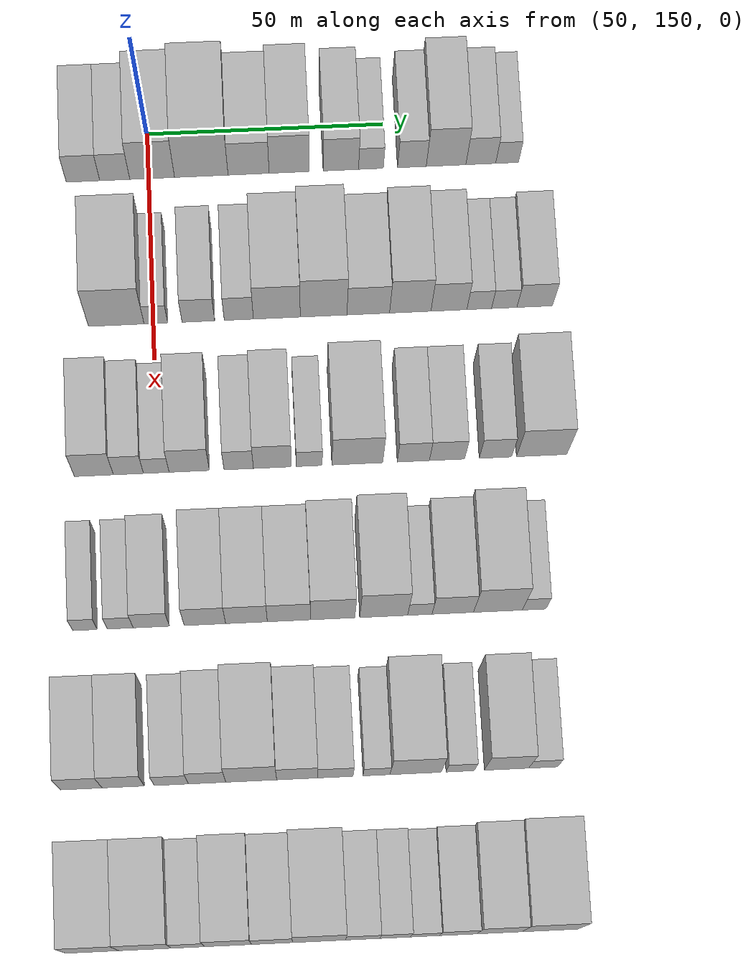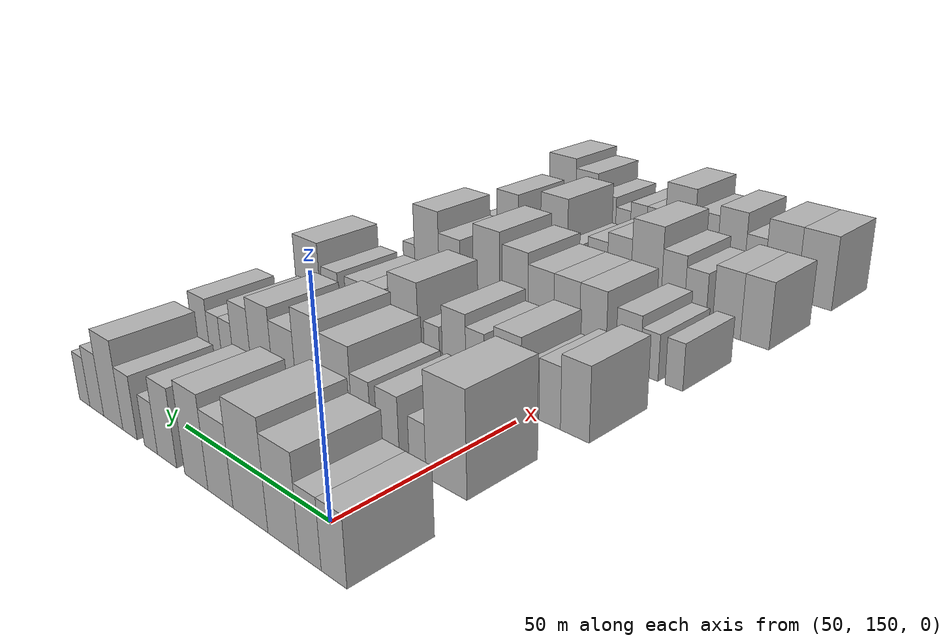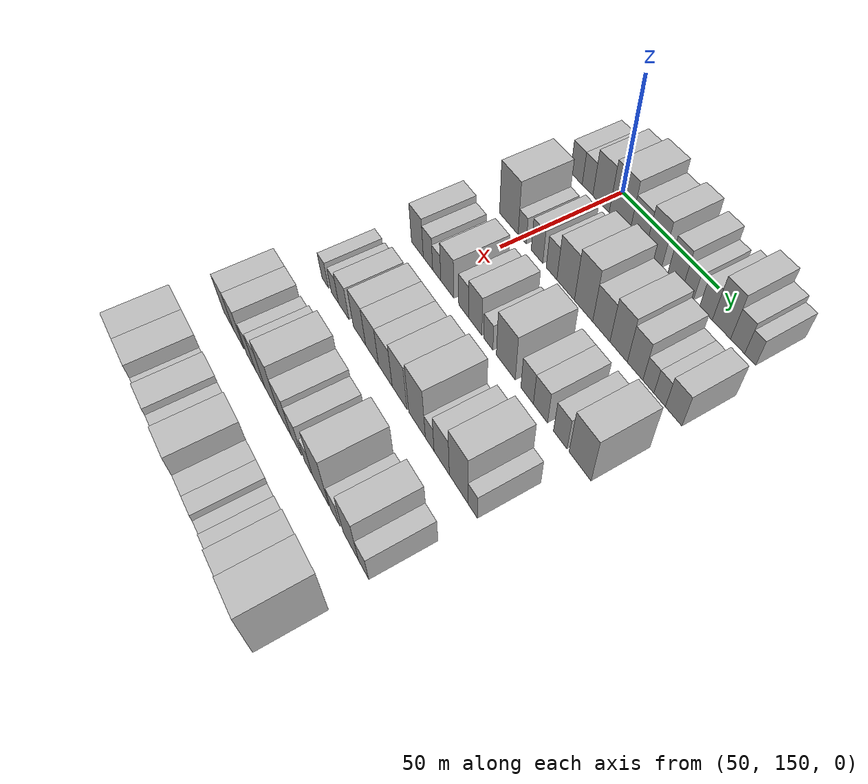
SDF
<sdf version="1.6">
 <world name="default">
  <model name="building_66">
   <static>1</static>
   <pose>50.0000 136.1511 0 0.000000 0.000000 0.000000</pose>
   <link name="link">
    <pose>0 0 7.50 0 0 0</pose>
    <collision name="collision"><geometry><box><size>20.0000 7.0738 15.0000</size></box></geometry></collision>
    <visual name="visual">
     <cast_shadows>0</cast_shadows>
     <geometry><box><size>20.0000 7.0738 15.0000</size></box></geometry>
     <material>
      <script>
       <uri>model://HANNAS_wall/materials/scripts</uri>
       <uri>model://HANNAS_wall/materials/textures</uri>
       <name>vrc/HANNAS_wall</name>
      </script>
     </material>
    </visual>
   </link>
  </model>
  <model name="building_67">
   <static>1</static>
   <pose>50.0000 142.8592 0 0.000000 0.000000 0.000000</pose>
   <link name="link">
    <pose>0 0 7.50 0 0 0</pose>
    <collision name="collision"><geometry><box><size>20.0000 6.3424 15.0000</size></box></geometry></collision>
    <visual name="visual">
     <cast_shadows>0</cast_shadows>
     <geometry><box><size>20.0000 6.3424 15.0000</size></box></geometry>
     <material>
      <script>
       <uri>model://HANNAS_wall/materials/scripts</uri>
       <uri>model://HANNAS_wall/materials/textures</uri>
       <name>vrc/HANNAS_wall</name>
      </script>
     </material>
    </visual>
   </link>
  </model>
  <model name="building_68">
   <static>1</static>
   <pose>50.0000 150.7585 0 0.000000 0.000000 0.000000</pose>
   <link name="link">
    <pose>0 0 10.50 0 0 0</pose>
    <collision name="collision"><geometry><box><size>20.0000 9.4562 21.0000</size></box></geometry></collision>
    <visual name="visual">
     <cast_shadows>0</cast_shadows>
     <geometry><box><size>20.0000 9.4562 21.0000</size></box></geometry>
     <material>
      <script>
       <uri>model://HANNAS_wall/materials/scripts</uri>
       <uri>model://HANNAS_wall/materials/textures</uri>
       <name>vrc/HANNAS_wall</name>
      </script>
     </material>
    </visual>
   </link>
  </model>
  <model name="building_69">
   <static>1</static>
   <pose>50.0000 161.1439 0 0.000000 0.000000 0.000000</pose>
   <link name="link">
    <pose>0 0 12.00 0 0 0</pose>
    <collision name="collision"><geometry><box><size>20.0000 11.3147 24.0000</size></box></geometry></collision>
    <visual name="visual">
     <cast_shadows>0</cast_shadows>
     <geometry><box><size>20.0000 11.3147 24.0000</size></box></geometry>
     <material>
      <script>
       <uri>model://HANNAS_wall/materials/scripts</uri>
       <uri>model://HANNAS_wall/materials/textures</uri>
       <name>vrc/HANNAS_wall</name>
      </script>
     </material>
    </visual>
   </link>
  </model>
  <model name="building_70">
   <static>1</static>
   <pose>50.0000 171.1383 0 0.000000 0.000000 0.000000</pose>
   <link name="link">
    <pose>0 0 9.00 0 0 0</pose>
    <collision name="collision"><geometry><box><size>20.0000 8.6740 18.0000</size></box></geometry></collision>
    <visual name="visual">
     <cast_shadows>0</cast_shadows>
     <geometry><box><size>20.0000 8.6740 18.0000</size></box></geometry>
     <material>
      <script>
       <uri>model://HANNAS_wall/materials/scripts</uri>
       <uri>model://HANNAS_wall/materials/textures</uri>
       <name>vrc/HANNAS_wall</name>
      </script>
     </material>
    </visual>
   </link>
  </model>
  <model name="building_71">
   <static>1</static>
   <pose>50.0000 179.7037 0 0.000000 0.000000 0.000000</pose>
   <link name="link">
    <pose>0 0 10.50 0 0 0</pose>
    <collision name="collision"><geometry><box><size>20.0000 8.4568 21.0000</size></box></geometry></collision>
    <visual name="visual">
     <cast_shadows>0</cast_shadows>
     <geometry><box><size>20.0000 8.4568 21.0000</size></box></geometry>
     <material>
      <script>
       <uri>model://HANNAS_wall/materials/scripts</uri>
       <uri>model://HANNAS_wall/materials/textures</uri>
       <name>vrc/HANNAS_wall</name>
      </script>
     </material>
    </visual>
   </link>
  </model>
  <model name="building_72">
   <static>1</static>
   <pose>50.0000 190.6628 0 0.000000 0.000000 0.000000</pose>
   <link name="link">
    <pose>0 0 9.00 0 0 0</pose>
    <collision name="collision"><geometry><box><size>20.0000 7.4614 18.0000</size></box></geometry></collision>
    <visual name="visual">
     <cast_shadows>0</cast_shadows>
     <geometry><box><size>20.0000 7.4614 18.0000</size></box></geometry>
     <material>
      <script>
       <uri>model://HANNAS_wall/materials/scripts</uri>
       <uri>model://HANNAS_wall/materials/textures</uri>
       <name>vrc/HANNAS_wall</name>
      </script>
     </material>
    </visual>
   </link>
  </model>
  <model name="building_73">
   <static>1</static>
   <pose>50.0000 197.0272 0 0.000000 0.000000 0.000000</pose>
   <link name="link">
    <pose>0 0 6.00 0 0 0</pose>
    <collision name="collision"><geometry><box><size>20.0000 5.2672 12.0000</size></box></geometry></collision>
    <visual name="visual">
     <cast_shadows>0</cast_shadows>
     <geometry><box><size>20.0000 5.2672 12.0000</size></box></geometry>
     <material>
      <script>
       <uri>model://HANNAS_wall/materials/scripts</uri>
       <uri>model://HANNAS_wall/materials/textures</uri>
       <name>vrc/HANNAS_wall</name>
      </script>
     </material>
    </visual>
   </link>
  </model>
  <model name="building_74">
   <static>1</static>
   <pose>50.0000 205.6999 0 0.000000 0.000000 0.000000</pose>
   <link name="link">
    <pose>0 0 7.50 0 0 0</pose>
    <collision name="collision"><geometry><box><size>20.0000 6.0783 15.0000</size></box></geometry></collision>
    <visual name="visual">
     <cast_shadows>0</cast_shadows>
     <geometry><box><size>20.0000 6.0783 15.0000</size></box></geometry>
     <material>
      <script>
       <uri>model://HANNAS_wall/materials/scripts</uri>
       <uri>model://HANNAS_wall/materials/textures</uri>
       <name>vrc/HANNAS_wall</name>
      </script>
     </material>
    </visual>
   </link>
  </model>
  <model name="building_75">
   <static>1</static>
   <pose>50.0000 212.9426 0 0.000000 0.000000 0.000000</pose>
   <link name="link">
    <pose>0 0 10.50 0 0 0</pose>
    <collision name="collision"><geometry><box><size>20.0000 8.4072 21.0000</size></box></geometry></collision>
    <visual name="visual">
     <cast_shadows>0</cast_shadows>
     <geometry><box><size>20.0000 8.4072 21.0000</size></box></geometry>
     <material>
      <script>
       <uri>model://HANNAS_wall/materials/scripts</uri>
       <uri>model://HANNAS_wall/materials/textures</uri>
       <name>vrc/HANNAS_wall</name>
      </script>
     </material>
    </visual>
   </link>
  </model>
  <model name="building_76">
   <static>1</static>
   <pose>50.0000 220.3035 0 0.000000 0.000000 0.000000</pose>
   <link name="link">
    <pose>0 0 7.50 0 0 0</pose>
    <collision name="collision"><geometry><box><size>20.0000 6.3146 15.0000</size></box></geometry></collision>
    <visual name="visual">
     <cast_shadows>0</cast_shadows>
     <geometry><box><size>20.0000 6.3146 15.0000</size></box></geometry>
     <material>
      <script>
       <uri>model://HANNAS_wall/materials/scripts</uri>
       <uri>model://HANNAS_wall/materials/textures</uri>
       <name>vrc/HANNAS_wall</name>
      </script>
     </material>
    </visual>
   </link>
  </model>
  <model name="building_77">
   <static>1</static>
   <pose>50.0000 225.8746 0 0.000000 0.000000 0.000000</pose>
   <link name="link">
    <pose>0 0 6.00 0 0 0</pose>
    <collision name="collision"><geometry><box><size>20.0000 4.8276 12.0000</size></box></geometry></collision>
    <visual name="visual">
     <cast_shadows>0</cast_shadows>
     <geometry><box><size>20.0000 4.8276 12.0000</size></box></geometry>
     <material>
      <script>
       <uri>model://HANNAS_wall/materials/scripts</uri>
       <uri>model://HANNAS_wall/materials/textures</uri>
       <name>vrc/HANNAS_wall</name>
      </script>
     </material>
    </visual>
   </link>
  </model>
  <model name="building_188">
   <static>1</static>
   <pose>82.0000 142.2856 0 0.000000 0.000000 0.000000</pose>
   <link name="link">
    <pose>0 0 12.00 0 0 0</pose>
    <collision name="collision"><geometry><box><size>20.0000 11.5788 24.0000</size></box></geometry></collision>
    <visual name="visual">
     <cast_shadows>0</cast_shadows>
     <geometry><box><size>20.0000 11.5788 24.0000</size></box></geometry>
     <material>
      <script>
       <uri>model://HANNAS_wall/materials/scripts</uri>
       <uri>model://HANNAS_wall/materials/textures</uri>
       <name>vrc/HANNAS_wall</name>
      </script>
     </material>
    </visual>
   </link>
  </model>
  <model name="building_189">
   <static>1</static>
   <pose>82.0000 150.5345 0 0.000000 0.000000 0.000000</pose>
   <link name="link">
    <pose>0 0 6.00 0 0 0</pose>
    <collision name="collision"><geometry><box><size>20.0000 4.9190 12.0000</size></box></geometry></collision>
    <visual name="visual">
     <cast_shadows>0</cast_shadows>
     <geometry><box><size>20.0000 4.9190 12.0000</size></box></geometry>
     <material>
      <script>
       <uri>model://HANNAS_wall/materials/scripts</uri>
       <uri>model://HANNAS_wall/materials/textures</uri>
       <name>vrc/HANNAS_wall</name>
      </script>
     </material>
    </visual>
   </link>
  </model>
  <model name="building_190">
   <static>1</static>
   <pose>82.0000 159.3938 0 0.000000 0.000000 0.000000</pose>
   <link name="link">
    <pose>0 0 7.50 0 0 0</pose>
    <collision name="collision"><geometry><box><size>20.0000 6.7996 15.0000</size></box></geometry></collision>
    <visual name="visual">
     <cast_shadows>0</cast_shadows>
     <geometry><box><size>20.0000 6.7996 15.0000</size></box></geometry>
     <material>
      <script>
       <uri>model://HANNAS_wall/materials/scripts</uri>
       <uri>model://HANNAS_wall/materials/textures</uri>
       <name>vrc/HANNAS_wall</name>
      </script>
     </material>
    </visual>
   </link>
  </model>
  <model name="building_191">
   <static>1</static>
   <pose>82.0000 167.8210 0 0.000000 0.000000 0.000000</pose>
   <link name="link">
    <pose>0 0 7.50 0 0 0</pose>
    <collision name="collision"><geometry><box><size>20.0000 6.0549 15.0000</size></box></geometry></collision>
    <visual name="visual">
     <cast_shadows>0</cast_shadows>
     <geometry><box><size>20.0000 6.0549 15.0000</size></box></geometry>
     <material>
      <script>
       <uri>model://HANNAS_wall/materials/scripts</uri>
       <uri>model://HANNAS_wall/materials/textures</uri>
       <name>vrc/HANNAS_wall</name>
      </script>
     </material>
    </visual>
   </link>
  </model>
  <model name="building_192">
   <static>1</static>
   <pose>82.0000 175.7324 0 0.000000 0.000000 0.000000</pose>
   <link name="link">
    <pose>0 0 10.50 0 0 0</pose>
    <collision name="collision"><geometry><box><size>20.0000 9.7680 21.0000</size></box></geometry></collision>
    <visual name="visual">
     <cast_shadows>0</cast_shadows>
     <geometry><box><size>20.0000 9.7680 21.0000</size></box></geometry>
     <material>
      <script>
       <uri>model://HANNAS_wall/materials/scripts</uri>
       <uri>model://HANNAS_wall/materials/textures</uri>
       <name>vrc/HANNAS_wall</name>
      </script>
     </material>
    </visual>
   </link>
  </model>
  <model name="building_193">
   <static>1</static>
   <pose>82.0000 185.4831 0 0.000000 0.000000 0.000000</pose>
   <link name="link">
    <pose>0 0 12.00 0 0 0</pose>
    <collision name="collision"><geometry><box><size>20.0000 9.7333 24.0000</size></box></geometry></collision>
    <visual name="visual">
     <cast_shadows>0</cast_shadows>
     <geometry><box><size>20.0000 9.7333 24.0000</size></box></geometry>
     <material>
      <script>
       <uri>model://HANNAS_wall/materials/scripts</uri>
       <uri>model://HANNAS_wall/materials/textures</uri>
       <name>vrc/HANNAS_wall</name>
      </script>
     </material>
    </visual>
   </link>
  </model>
  <model name="building_194">
   <static>1</static>
   <pose>82.0000 194.7995 0 0.000000 0.000000 0.000000</pose>
   <link name="link">
    <pose>0 0 9.00 0 0 0</pose>
    <collision name="collision"><geometry><box><size>20.0000 8.8995 18.0000</size></box></geometry></collision>
    <visual name="visual">
     <cast_shadows>0</cast_shadows>
     <geometry><box><size>20.0000 8.8995 18.0000</size></box></geometry>
     <material>
      <script>
       <uri>model://HANNAS_wall/materials/scripts</uri>
       <uri>model://HANNAS_wall/materials/textures</uri>
       <name>vrc/HANNAS_wall</name>
      </script>
     </material>
    </visual>
   </link>
  </model>
  <model name="building_195">
   <static>1</static>
   <pose>82.0000 203.5710 0 0.000000 0.000000 0.000000</pose>
   <link name="link">
    <pose>0 0 10.50 0 0 0</pose>
    <collision name="collision"><geometry><box><size>20.0000 8.6434 21.0000</size></box></geometry></collision>
    <visual name="visual">
     <cast_shadows>0</cast_shadows>
     <geometry><box><size>20.0000 8.6434 21.0000</size></box></geometry>
     <material>
      <script>
       <uri>model://HANNAS_wall/materials/scripts</uri>
       <uri>model://HANNAS_wall/materials/textures</uri>
       <name>vrc/HANNAS_wall</name>
      </script>
     </material>
    </visual>
   </link>
  </model>
  <model name="building_196">
   <static>1</static>
   <pose>82.0000 211.6442 0 0.000000 0.000000 0.000000</pose>
   <link name="link">
    <pose>0 0 9.00 0 0 0</pose>
    <collision name="collision"><geometry><box><size>20.0000 7.5030 18.0000</size></box></geometry></collision>
    <visual name="visual">
     <cast_shadows>0</cast_shadows>
     <geometry><box><size>20.0000 7.5030 18.0000</size></box></geometry>
     <material>
      <script>
       <uri>model://HANNAS_wall/materials/scripts</uri>
       <uri>model://HANNAS_wall/materials/textures</uri>
       <name>vrc/HANNAS_wall</name>
      </script>
     </material>
    </visual>
   </link>
  </model>
  <model name="building_197">
   <static>1</static>
   <pose>82.0000 217.9828 0 0.000000 0.000000 0.000000</pose>
   <link name="link">
    <pose>0 0 6.00 0 0 0</pose>
    <collision name="collision"><geometry><box><size>20.0000 5.1744 12.0000</size></box></geometry></collision>
    <visual name="visual">
     <cast_shadows>0</cast_shadows>
     <geometry><box><size>20.0000 5.1744 12.0000</size></box></geometry>
     <material>
      <script>
       <uri>model://HANNAS_wall/materials/scripts</uri>
       <uri>model://HANNAS_wall/materials/textures</uri>
       <name>vrc/HANNAS_wall</name>
      </script>
     </material>
    </visual>
   </link>
  </model>
  <model name="building_198">
   <static>1</static>
   <pose>82.0000 223.2124 0 0.000000 0.000000 0.000000</pose>
   <link name="link">
    <pose>0 0 6.00 0 0 0</pose>
    <collision name="collision"><geometry><box><size>20.0000 5.2848 12.0000</size></box></geometry></collision>
    <visual name="visual">
     <cast_shadows>0</cast_shadows>
     <geometry><box><size>20.0000 5.2848 12.0000</size></box></geometry>
     <material>
      <script>
       <uri>model://HANNAS_wall/materials/scripts</uri>
       <uri>model://HANNAS_wall/materials/textures</uri>
       <name>vrc/HANNAS_wall</name>
      </script>
     </material>
    </visual>
   </link>
  </model>
  <model name="building_199">
   <static>1</static>
   <pose>82.0000 229.5684 0 0.000000 0.000000 0.000000</pose>
   <link name="link">
    <pose>0 0 7.50 0 0 0</pose>
    <collision name="collision"><geometry><box><size>20.0000 7.4271 15.0000</size></box></geometry></collision>
    <visual name="visual">
     <cast_shadows>0</cast_shadows>
     <geometry><box><size>20.0000 7.4271 15.0000</size></box></geometry>
     <material>
      <script>
       <uri>model://HANNAS_wall/materials/scripts</uri>
       <uri>model://HANNAS_wall/materials/textures</uri>
       <name>vrc/HANNAS_wall</name>
      </script>
     </material>
    </visual>
   </link>
  </model>
  <model name="building_308">
   <static>1</static>
   <pose>114.0000 136.8201 0 0.000000 0.000000 0.000000</pose>
   <link name="link">
    <pose>0 0 9.00 0 0 0</pose>
    <collision name="collision"><geometry><box><size>20.0000 7.9923 18.0000</size></box></geometry></collision>
    <visual name="visual">
     <cast_shadows>0</cast_shadows>
     <geometry><box><size>20.0000 7.9923 18.0000</size></box></geometry>
     <material>
      <script>
       <uri>model://HANNAS_wall/materials/scripts</uri>
       <uri>model://HANNAS_wall/materials/textures</uri>
       <name>vrc/HANNAS_wall</name>
      </script>
     </material>
    </visual>
   </link>
  </model>
  <model name="building_309">
   <static>1</static>
   <pose>114.0000 143.9037 0 0.000000 0.000000 0.000000</pose>
   <link name="link">
    <pose>0 0 7.50 0 0 0</pose>
    <collision name="collision"><geometry><box><size>20.0000 6.1749 15.0000</size></box></geometry></collision>
    <visual name="visual">
     <cast_shadows>0</cast_shadows>
     <geometry><box><size>20.0000 6.1749 15.0000</size></box></geometry>
     <material>
      <script>
       <uri>model://HANNAS_wall/materials/scripts</uri>
       <uri>model://HANNAS_wall/materials/textures</uri>
       <name>vrc/HANNAS_wall</name>
      </script>
     </material>
    </visual>
   </link>
  </model>
  <model name="building_310">
   <static>1</static>
   <pose>114.0000 149.6226 0 0.000000 0.000000 0.000000</pose>
   <link name="link">
    <pose>0 0 6.00 0 0 0</pose>
    <collision name="collision"><geometry><box><size>20.0000 5.2628 12.0000</size></box></geometry></collision>
    <visual name="visual">
     <cast_shadows>0</cast_shadows>
     <geometry><box><size>20.0000 5.2628 12.0000</size></box></geometry>
     <material>
      <script>
       <uri>model://HANNAS_wall/materials/scripts</uri>
       <uri>model://HANNAS_wall/materials/textures</uri>
       <name>vrc/HANNAS_wall</name>
      </script>
     </material>
    </visual>
   </link>
  </model>
  <model name="building_311">
   <static>1</static>
   <pose>114.0000 156.3902 0 0.000000 0.000000 0.000000</pose>
   <link name="link">
    <pose>0 0 9.00 0 0 0</pose>
    <collision name="collision"><geometry><box><size>20.0000 8.2724 18.0000</size></box></geometry></collision>
    <visual name="visual">
     <cast_shadows>0</cast_shadows>
     <geometry><box><size>20.0000 8.2724 18.0000</size></box></geometry>
     <material>
      <script>
       <uri>model://HANNAS_wall/materials/scripts</uri>
       <uri>model://HANNAS_wall/materials/textures</uri>
       <name>vrc/HANNAS_wall</name>
      </script>
     </material>
    </visual>
   </link>
  </model>
  <model name="building_312">
   <static>1</static>
   <pose>114.0000 166.5382 0 0.000000 0.000000 0.000000</pose>
   <link name="link">
    <pose>0 0 7.50 0 0 0</pose>
    <collision name="collision"><geometry><box><size>20.0000 6.0236 15.0000</size></box></geometry></collision>
    <visual name="visual">
     <cast_shadows>0</cast_shadows>
     <geometry><box><size>20.0000 6.0236 15.0000</size></box></geometry>
     <material>
      <script>
       <uri>model://HANNAS_wall/materials/scripts</uri>
       <uri>model://HANNAS_wall/materials/textures</uri>
       <name>vrc/HANNAS_wall</name>
      </script>
     </material>
    </visual>
   </link>
  </model>
  <model name="building_313">
   <static>1</static>
   <pose>114.0000 173.4557 0 0.000000 0.000000 0.000000</pose>
   <link name="link">
    <pose>0 0 9.00 0 0 0</pose>
    <collision name="collision"><geometry><box><size>20.0000 7.8115 18.0000</size></box></geometry></collision>
    <visual name="visual">
     <cast_shadows>0</cast_shadows>
     <geometry><box><size>20.0000 7.8115 18.0000</size></box></geometry>
     <material>
      <script>
       <uri>model://HANNAS_wall/materials/scripts</uri>
       <uri>model://HANNAS_wall/materials/textures</uri>
       <name>vrc/HANNAS_wall</name>
      </script>
     </material>
    </visual>
   </link>
  </model>
  <model name="building_314">
   <static>1</static>
   <pose>114.0000 181.0219 0 0.000000 0.000000 0.000000</pose>
   <link name="link">
    <pose>0 0 6.00 0 0 0</pose>
    <collision name="collision"><geometry><box><size>20.0000 5.3210 12.0000</size></box></geometry></collision>
    <visual name="visual">
     <cast_shadows>0</cast_shadows>
     <geometry><box><size>20.0000 5.3210 12.0000</size></box></geometry>
     <material>
      <script>
       <uri>model://HANNAS_wall/materials/scripts</uri>
       <uri>model://HANNAS_wall/materials/textures</uri>
       <name>vrc/HANNAS_wall</name>
      </script>
     </material>
    </visual>
   </link>
  </model>
  <model name="building_315">
   <static>1</static>
   <pose>114.0000 190.9011 0 0.000000 0.000000 0.000000</pose>
   <link name="link">
    <pose>0 0 10.50 0 0 0</pose>
    <collision name="collision"><geometry><box><size>20.0000 10.4374 21.0000</size></box></geometry></collision>
    <visual name="visual">
     <cast_shadows>0</cast_shadows>
     <geometry><box><size>20.0000 10.4374 21.0000</size></box></geometry>
     <material>
      <script>
       <uri>model://HANNAS_wall/materials/scripts</uri>
       <uri>model://HANNAS_wall/materials/textures</uri>
       <name>vrc/HANNAS_wall</name>
      </script>
     </material>
    </visual>
   </link>
  </model>
  <model name="building_316">
   <static>1</static>
   <pose>114.0000 202.4316 0 0.000000 0.000000 0.000000</pose>
   <link name="link">
    <pose>0 0 7.50 0 0 0</pose>
    <collision name="collision"><geometry><box><size>20.0000 6.6236 15.0000</size></box></geometry></collision>
    <visual name="visual">
     <cast_shadows>0</cast_shadows>
     <geometry><box><size>20.0000 6.6236 15.0000</size></box></geometry>
     <material>
      <script>
       <uri>model://HANNAS_wall/materials/scripts</uri>
       <uri>model://HANNAS_wall/materials/textures</uri>
       <name>vrc/HANNAS_wall</name>
      </script>
     </material>
    </visual>
   </link>
  </model>
  <model name="building_317">
   <static>1</static>
   <pose>114.0000 209.3651 0 0.000000 0.000000 0.000000</pose>
   <link name="link">
    <pose>0 0 7.50 0 0 0</pose>
    <collision name="collision"><geometry><box><size>20.0000 7.2434 15.0000</size></box></geometry></collision>
    <visual name="visual">
     <cast_shadows>0</cast_shadows>
     <geometry><box><size>20.0000 7.2434 15.0000</size></box></geometry>
     <material>
      <script>
       <uri>model://HANNAS_wall/materials/scripts</uri>
       <uri>model://HANNAS_wall/materials/textures</uri>
       <name>vrc/HANNAS_wall</name>
      </script>
     </material>
    </visual>
   </link>
  </model>
  <model name="building_318">
   <static>1</static>
   <pose>114.0000 219.3197 0 0.000000 0.000000 0.000000</pose>
   <link name="link">
    <pose>0 0 7.50 0 0 0</pose>
    <collision name="collision"><geometry><box><size>20.0000 6.6658 15.0000</size></box></geometry></collision>
    <visual name="visual">
     <cast_shadows>0</cast_shadows>
     <geometry><box><size>20.0000 6.6658 15.0000</size></box></geometry>
     <material>
      <script>
       <uri>model://HANNAS_wall/materials/scripts</uri>
       <uri>model://HANNAS_wall/materials/textures</uri>
       <name>vrc/HANNAS_wall</name>
      </script>
     </material>
    </visual>
   </link>
  </model>
  <model name="building_319">
   <static>1</static>
   <pose>114.0000 228.8425 0 0.000000 0.000000 0.000000</pose>
   <link name="link">
    <pose>0 0 10.50 0 0 0</pose>
    <collision name="collision"><geometry><box><size>20.0000 10.3797 21.0000</size></box></geometry></collision>
    <visual name="visual">
     <cast_shadows>0</cast_shadows>
     <geometry><box><size>20.0000 10.3797 21.0000</size></box></geometry>
     <material>
      <script>
       <uri>model://HANNAS_wall/materials/scripts</uri>
       <uri>model://HANNAS_wall/materials/textures</uri>
       <name>vrc/HANNAS_wall</name>
      </script>
     </material>
    </visual>
   </link>
  </model>
  <model name="building_421">
   <static>1</static>
   <pose>146.0000 134.2107 0 0.000000 0.000000 0.000000</pose>
   <link name="link">
    <pose>0 0 6.00 0 0 0</pose>
    <collision name="collision"><geometry><box><size>20.0000 4.9555 12.0000</size></box></geometry></collision>
    <visual name="visual">
     <cast_shadows>0</cast_shadows>
     <geometry><box><size>20.0000 4.9555 12.0000</size></box></geometry>
     <material>
      <script>
       <uri>model://HANNAS_wall/materials/scripts</uri>
       <uri>model://HANNAS_wall/materials/textures</uri>
       <name>vrc/HANNAS_wall</name>
      </script>
     </material>
    </visual>
   </link>
  </model>
  <model name="building_422">
   <static>1</static>
   <pose>146.0000 141.3044 0 0.000000 0.000000 0.000000</pose>
   <link name="link">
    <pose>0 0 6.00 0 0 0</pose>
    <collision name="collision"><geometry><box><size>20.0000 5.2319 12.0000</size></box></geometry></collision>
    <visual name="visual">
     <cast_shadows>0</cast_shadows>
     <geometry><box><size>20.0000 5.2319 12.0000</size></box></geometry>
     <material>
      <script>
       <uri>model://HANNAS_wall/materials/scripts</uri>
       <uri>model://HANNAS_wall/materials/textures</uri>
       <name>vrc/HANNAS_wall</name>
      </script>
     </material>
    </visual>
   </link>
  </model>
  <model name="building_423">
   <static>1</static>
   <pose>146.0000 147.5821 0 0.000000 0.000000 0.000000</pose>
   <link name="link">
    <pose>0 0 7.50 0 0 0</pose>
    <collision name="collision"><geometry><box><size>20.0000 7.3235 15.0000</size></box></geometry></collision>
    <visual name="visual">
     <cast_shadows>0</cast_shadows>
     <geometry><box><size>20.0000 7.3235 15.0000</size></box></geometry>
     <material>
      <script>
       <uri>model://HANNAS_wall/materials/scripts</uri>
       <uri>model://HANNAS_wall/materials/textures</uri>
       <name>vrc/HANNAS_wall</name>
      </script>
     </material>
    </visual>
   </link>
  </model>
  <model name="building_424">
   <static>1</static>
   <pose>146.0000 158.4353 0 0.000000 0.000000 0.000000</pose>
   <link name="link">
    <pose>0 0 9.00 0 0 0</pose>
    <collision name="collision"><geometry><box><size>20.0000 8.3828 18.0000</size></box></geometry></collision>
    <visual name="visual">
     <cast_shadows>0</cast_shadows>
     <geometry><box><size>20.0000 8.3828 18.0000</size></box></geometry>
     <material>
      <script>
       <uri>model://HANNAS_wall/materials/scripts</uri>
       <uri>model://HANNAS_wall/materials/textures</uri>
       <name>vrc/HANNAS_wall</name>
      </script>
     </material>
    </visual>
   </link>
  </model>
  <model name="building_425">
   <static>1</static>
   <pose>146.0000 166.8450 0 0.000000 0.000000 0.000000</pose>
   <link name="link">
    <pose>0 0 9.00 0 0 0</pose>
    <collision name="collision"><geometry><box><size>20.0000 8.4367 18.0000</size></box></geometry></collision>
    <visual name="visual">
     <cast_shadows>0</cast_shadows>
     <geometry><box><size>20.0000 8.4367 18.0000</size></box></geometry>
     <material>
      <script>
       <uri>model://HANNAS_wall/materials/scripts</uri>
       <uri>model://HANNAS_wall/materials/textures</uri>
       <name>vrc/HANNAS_wall</name>
      </script>
     </material>
    </visual>
   </link>
  </model>
  <model name="building_426">
   <static>1</static>
   <pose>146.0000 175.3993 0 0.000000 0.000000 0.000000</pose>
   <link name="link">
    <pose>0 0 9.00 0 0 0</pose>
    <collision name="collision"><geometry><box><size>20.0000 8.6718 18.0000</size></box></geometry></collision>
    <visual name="visual">
     <cast_shadows>0</cast_shadows>
     <geometry><box><size>20.0000 8.6718 18.0000</size></box></geometry>
     <material>
      <script>
       <uri>model://HANNAS_wall/materials/scripts</uri>
       <uri>model://HANNAS_wall/materials/textures</uri>
       <name>vrc/HANNAS_wall</name>
      </script>
     </material>
    </visual>
   </link>
  </model>
  <model name="building_427">
   <static>1</static>
   <pose>146.0000 184.2539 0 0.000000 0.000000 0.000000</pose>
   <link name="link">
    <pose>0 0 10.50 0 0 0</pose>
    <collision name="collision"><geometry><box><size>20.0000 9.0373 21.0000</size></box></geometry></collision>
    <visual name="visual">
     <cast_shadows>0</cast_shadows>
     <geometry><box><size>20.0000 9.0373 21.0000</size></box></geometry>
     <material>
      <script>
       <uri>model://HANNAS_wall/materials/scripts</uri>
       <uri>model://HANNAS_wall/materials/textures</uri>
       <name>vrc/HANNAS_wall</name>
      </script>
     </material>
    </visual>
   </link>
  </model>
  <model name="building_428">
   <static>1</static>
   <pose>146.0000 194.6235 0 0.000000 0.000000 0.000000</pose>
   <link name="link">
    <pose>0 0 12.00 0 0 0</pose>
    <collision name="collision"><geometry><box><size>20.0000 9.7020 24.0000</size></box></geometry></collision>
    <visual name="visual">
     <cast_shadows>0</cast_shadows>
     <geometry><box><size>20.0000 9.7020 24.0000</size></box></geometry>
     <material>
      <script>
       <uri>model://HANNAS_wall/materials/scripts</uri>
       <uri>model://HANNAS_wall/materials/textures</uri>
       <name>vrc/HANNAS_wall</name>
      </script>
     </material>
    </visual>
   </link>
  </model>
  <model name="building_429">
   <static>1</static>
   <pose>146.0000 201.9454 0 0.000000 0.000000 0.000000</pose>
   <link name="link">
    <pose>0 0 6.00 0 0 0</pose>
    <collision name="collision"><geometry><box><size>20.0000 4.9418 12.0000</size></box></geometry></collision>
    <visual name="visual">
     <cast_shadows>0</cast_shadows>
     <geometry><box><size>20.0000 4.9418 12.0000</size></box></geometry>
     <material>
      <script>
       <uri>model://HANNAS_wall/materials/scripts</uri>
       <uri>model://HANNAS_wall/materials/textures</uri>
       <name>vrc/HANNAS_wall</name>
      </script>
     </material>
    </visual>
   </link>
  </model>
  <model name="building_430">
   <static>1</static>
   <pose>146.0000 208.6224 0 0.000000 0.000000 0.000000</pose>
   <link name="link">
    <pose>0 0 9.00 0 0 0</pose>
    <collision name="collision"><geometry><box><size>20.0000 8.4122 18.0000</size></box></geometry></collision>
    <visual name="visual">
     <cast_shadows>0</cast_shadows>
     <geometry><box><size>20.0000 8.4122 18.0000</size></box></geometry>
     <material>
      <script>
       <uri>model://HANNAS_wall/materials/scripts</uri>
       <uri>model://HANNAS_wall/materials/textures</uri>
       <name>vrc/HANNAS_wall</name>
      </script>
     </material>
    </visual>
   </link>
  </model>
  <model name="building_431">
   <static>1</static>
   <pose>146.0000 217.7773 0 0.000000 0.000000 0.000000</pose>
   <link name="link">
    <pose>0 0 12.00 0 0 0</pose>
    <collision name="collision"><geometry><box><size>20.0000 9.8976 24.0000</size></box></geometry></collision>
    <visual name="visual">
     <cast_shadows>0</cast_shadows>
     <geometry><box><size>20.0000 9.8976 24.0000</size></box></geometry>
     <material>
      <script>
       <uri>model://HANNAS_wall/materials/scripts</uri>
       <uri>model://HANNAS_wall/materials/textures</uri>
       <name>vrc/HANNAS_wall</name>
      </script>
     </material>
    </visual>
   </link>
  </model>
  <model name="building_432">
   <static>1</static>
   <pose>146.0000 225.1303 0 0.000000 0.000000 0.000000</pose>
   <link name="link">
    <pose>0 0 6.00 0 0 0</pose>
    <collision name="collision"><geometry><box><size>20.0000 4.8084 12.0000</size></box></geometry></collision>
    <visual name="visual">
     <cast_shadows>0</cast_shadows>
     <geometry><box><size>20.0000 4.8084 12.0000</size></box></geometry>
     <material>
      <script>
       <uri>model://HANNAS_wall/materials/scripts</uri>
       <uri>model://HANNAS_wall/materials/textures</uri>
       <name>vrc/HANNAS_wall</name>
      </script>
     </material>
    </visual>
   </link>
  </model>
  <model name="building_544">
   <static>1</static>
   <pose>178.0000 132.6635 0 0.000000 0.000000 0.000000</pose>
   <link name="link">
    <pose>0 0 9.00 0 0 0</pose>
    <collision name="collision"><geometry><box><size>20.0000 8.2802 18.0000</size></box></geometry></collision>
    <visual name="visual">
     <cast_shadows>0</cast_shadows>
     <geometry><box><size>20.0000 8.2802 18.0000</size></box></geometry>
     <material>
      <script>
       <uri>model://HANNAS_wall/materials/scripts</uri>
       <uri>model://HANNAS_wall/materials/textures</uri>
       <name>vrc/HANNAS_wall</name>
      </script>
     </material>
    </visual>
   </link>
  </model>
  <model name="building_545">
   <static>1</static>
   <pose>178.0000 141.0012 0 0.000000 0.000000 0.000000</pose>
   <link name="link">
    <pose>0 0 9.00 0 0 0</pose>
    <collision name="collision"><geometry><box><size>20.0000 8.3952 18.0000</size></box></geometry></collision>
    <visual name="visual">
     <cast_shadows>0</cast_shadows>
     <geometry><box><size>20.0000 8.3952 18.0000</size></box></geometry>
     <material>
      <script>
       <uri>model://HANNAS_wall/materials/scripts</uri>
       <uri>model://HANNAS_wall/materials/textures</uri>
       <name>vrc/HANNAS_wall</name>
      </script>
     </material>
    </visual>
   </link>
  </model>
  <model name="building_546">
   <static>1</static>
   <pose>178.0000 150.5816 0 0.000000 0.000000 0.000000</pose>
   <link name="link">
    <pose>0 0 7.50 0 0 0</pose>
    <collision name="collision"><geometry><box><size>20.0000 6.7654 15.0000</size></box></geometry></collision>
    <visual name="visual">
     <cast_shadows>0</cast_shadows>
     <geometry><box><size>20.0000 6.7654 15.0000</size></box></geometry>
     <material>
      <script>
       <uri>model://HANNAS_wall/materials/scripts</uri>
       <uri>model://HANNAS_wall/materials/textures</uri>
       <name>vrc/HANNAS_wall</name>
      </script>
     </material>
    </visual>
   </link>
  </model>
  <model name="building_547">
   <static>1</static>
   <pose>178.0000 157.7093 0 0.000000 0.000000 0.000000</pose>
   <link name="link">
    <pose>0 0 9.00 0 0 0</pose>
    <collision name="collision"><geometry><box><size>20.0000 7.4901 18.0000</size></box></geometry></collision>
    <visual name="visual">
     <cast_shadows>0</cast_shadows>
     <geometry><box><size>20.0000 7.4901 18.0000</size></box></geometry>
     <material>
      <script>
       <uri>model://HANNAS_wall/materials/scripts</uri>
       <uri>model://HANNAS_wall/materials/textures</uri>
       <name>vrc/HANNAS_wall</name>
      </script>
     </material>
    </visual>
   </link>
  </model>
  <model name="building_548">
   <static>1</static>
   <pose>178.0000 166.5154 0 0.000000 0.000000 0.000000</pose>
   <link name="link">
    <pose>0 0 12.00 0 0 0</pose>
    <collision name="collision"><geometry><box><size>20.0000 10.1219 24.0000</size></box></geometry></collision>
    <visual name="visual">
     <cast_shadows>0</cast_shadows>
     <geometry><box><size>20.0000 10.1219 24.0000</size></box></geometry>
     <material>
      <script>
       <uri>model://HANNAS_wall/materials/scripts</uri>
       <uri>model://HANNAS_wall/materials/textures</uri>
       <name>vrc/HANNAS_wall</name>
      </script>
     </material>
    </visual>
   </link>
  </model>
  <model name="building_549">
   <static>1</static>
   <pose>178.0000 175.6660 0 0.000000 0.000000 0.000000</pose>
   <link name="link">
    <pose>0 0 9.00 0 0 0</pose>
    <collision name="collision"><geometry><box><size>20.0000 8.1793 18.0000</size></box></geometry></collision>
    <visual name="visual">
     <cast_shadows>0</cast_shadows>
     <geometry><box><size>20.0000 8.1793 18.0000</size></box></geometry>
     <material>
      <script>
       <uri>model://HANNAS_wall/materials/scripts</uri>
       <uri>model://HANNAS_wall/materials/textures</uri>
       <name>vrc/HANNAS_wall</name>
      </script>
     </material>
    </visual>
   </link>
  </model>
  <model name="building_550">
   <static>1</static>
   <pose>178.0000 183.2770 0 0.000000 0.000000 0.000000</pose>
   <link name="link">
    <pose>0 0 7.50 0 0 0</pose>
    <collision name="collision"><geometry><box><size>20.0000 7.0428 15.0000</size></box></geometry></collision>
    <visual name="visual">
     <cast_shadows>0</cast_shadows>
     <geometry><box><size>20.0000 7.0428 15.0000</size></box></geometry>
     <material>
      <script>
       <uri>model://HANNAS_wall/materials/scripts</uri>
       <uri>model://HANNAS_wall/materials/textures</uri>
       <name>vrc/HANNAS_wall</name>
      </script>
     </material>
    </visual>
   </link>
  </model>
  <model name="building_551">
   <static>1</static>
   <pose>178.0000 191.4849 0 0.000000 0.000000 0.000000</pose>
   <link name="link">
    <pose>0 0 6.00 0 0 0</pose>
    <collision name="collision"><geometry><box><size>20.0000 5.3729 12.0000</size></box></geometry></collision>
    <visual name="visual">
     <cast_shadows>0</cast_shadows>
     <geometry><box><size>20.0000 5.3729 12.0000</size></box></geometry>
     <material>
      <script>
       <uri>model://HANNAS_wall/materials/scripts</uri>
       <uri>model://HANNAS_wall/materials/textures</uri>
       <name>vrc/HANNAS_wall</name>
      </script>
     </material>
    </visual>
   </link>
  </model>
  <model name="building_552">
   <static>1</static>
   <pose>178.0000 199.2728 0 0.000000 0.000000 0.000000</pose>
   <link name="link">
    <pose>0 0 12.00 0 0 0</pose>
    <collision name="collision"><geometry><box><size>20.0000 10.2030 24.0000</size></box></geometry></collision>
    <visual name="visual">
     <cast_shadows>0</cast_shadows>
     <geometry><box><size>20.0000 10.2030 24.0000</size></box></geometry>
     <material>
      <script>
       <uri>model://HANNAS_wall/materials/scripts</uri>
       <uri>model://HANNAS_wall/materials/textures</uri>
       <name>vrc/HANNAS_wall</name>
      </script>
     </material>
    </visual>
   </link>
  </model>
  <model name="building_553">
   <static>1</static>
   <pose>178.0000 208.1978 0 0.000000 0.000000 0.000000</pose>
   <link name="link">
    <pose>0 0 6.00 0 0 0</pose>
    <collision name="collision"><geometry><box><size>20.0000 5.6469 12.0000</size></box></geometry></collision>
    <visual name="visual">
     <cast_shadows>0</cast_shadows>
     <geometry><box><size>20.0000 5.6469 12.0000</size></box></geometry>
     <material>
      <script>
       <uri>model://HANNAS_wall/materials/scripts</uri>
       <uri>model://HANNAS_wall/materials/textures</uri>
       <name>vrc/HANNAS_wall</name>
      </script>
     </material>
    </visual>
   </link>
  </model>
  <model name="building_554">
   <static>1</static>
   <pose>178.0000 217.4539 0 0.000000 0.000000 0.000000</pose>
   <link name="link">
    <pose>0 0 10.50 0 0 0</pose>
    <collision name="collision"><geometry><box><size>20.0000 8.8654 21.0000</size></box></geometry></collision>
    <visual name="visual">
     <cast_shadows>0</cast_shadows>
     <geometry><box><size>20.0000 8.8654 21.0000</size></box></geometry>
     <material>
      <script>
       <uri>model://HANNAS_wall/materials/scripts</uri>
       <uri>model://HANNAS_wall/materials/textures</uri>
       <name>vrc/HANNAS_wall</name>
      </script>
     </material>
    </visual>
   </link>
  </model>
  <model name="building_555">
   <static>1</static>
   <pose>178.0000 224.7653 0 0.000000 0.000000 0.000000</pose>
   <link name="link">
    <pose>0 0 6.00 0 0 0</pose>
    <collision name="collision"><geometry><box><size>20.0000 5.7574 12.0000</size></box></geometry></collision>
    <visual name="visual">
     <cast_shadows>0</cast_shadows>
     <geometry><box><size>20.0000 5.7574 12.0000</size></box></geometry>
     <material>
      <script>
       <uri>model://HANNAS_wall/materials/scripts</uri>
       <uri>model://HANNAS_wall/materials/textures</uri>
       <name>vrc/HANNAS_wall</name>
      </script>
     </material>
    </visual>
   </link>
  </model>
  <model name="building_670">
   <static>1</static>
   <pose>210.0000 134.0073 0 0.000000 0.000000 0.000000</pose>
   <link name="link">
    <pose>0 0 10.50 0 0 0</pose>
    <collision name="collision"><geometry><box><size>20.0000 10.4317 21.0000</size></box></geometry></collision>
    <visual name="visual">
     <cast_shadows>0</cast_shadows>
     <geometry><box><size>20.0000 10.4317 21.0000</size></box></geometry>
     <material>
      <script>
       <uri>model://HANNAS_wall/materials/scripts</uri>
       <uri>model://HANNAS_wall/materials/textures</uri>
       <name>vrc/HANNAS_wall</name>
      </script>
     </material>
    </visual>
   </link>
  </model>
  <model name="building_671">
   <static>1</static>
   <pose>210.0000 144.3980 0 0.000000 0.000000 0.000000</pose>
   <link name="link">
    <pose>0 0 10.50 0 0 0</pose>
    <collision name="collision"><geometry><box><size>20.0000 10.3497 21.0000</size></box></geometry></collision>
    <visual name="visual">
     <cast_shadows>0</cast_shadows>
     <geometry><box><size>20.0000 10.3497 21.0000</size></box></geometry>
     <material>
      <script>
       <uri>model://HANNAS_wall/materials/scripts</uri>
       <uri>model://HANNAS_wall/materials/textures</uri>
       <name>vrc/HANNAS_wall</name>
      </script>
     </material>
    </visual>
   </link>
  </model>
  <model name="building_672">
   <static>1</static>
   <pose>210.0000 152.8547 0 0.000000 0.000000 0.000000</pose>
   <link name="link">
    <pose>0 0 7.50 0 0 0</pose>
    <collision name="collision"><geometry><box><size>20.0000 6.5637 15.0000</size></box></geometry></collision>
    <visual name="visual">
     <cast_shadows>0</cast_shadows>
     <geometry><box><size>20.0000 6.5637 15.0000</size></box></geometry>
     <material>
      <script>
       <uri>model://HANNAS_wall/materials/scripts</uri>
       <uri>model://HANNAS_wall/materials/textures</uri>
       <name>vrc/HANNAS_wall</name>
      </script>
     </material>
    </visual>
   </link>
  </model>
  <model name="building_673">
   <static>1</static>
   <pose>210.0000 160.7056 0 0.000000 0.000000 0.000000</pose>
   <link name="link">
    <pose>0 0 10.50 0 0 0</pose>
    <collision name="collision"><geometry><box><size>20.0000 9.1380 21.0000</size></box></geometry></collision>
    <visual name="visual">
     <cast_shadows>0</cast_shadows>
     <geometry><box><size>20.0000 9.1380 21.0000</size></box></geometry>
     <material>
      <script>
       <uri>model://HANNAS_wall/materials/scripts</uri>
       <uri>model://HANNAS_wall/materials/textures</uri>
       <name>vrc/HANNAS_wall</name>
      </script>
     </material>
    </visual>
   </link>
  </model>
  <model name="building_674">
   <static>1</static>
   <pose>210.0000 169.3029 0 0.000000 0.000000 0.000000</pose>
   <link name="link">
    <pose>0 0 9.00 0 0 0</pose>
    <collision name="collision"><geometry><box><size>20.0000 8.0565 18.0000</size></box></geometry></collision>
    <visual name="visual">
     <cast_shadows>0</cast_shadows>
     <geometry><box><size>20.0000 8.0565 18.0000</size></box></geometry>
     <material>
      <script>
       <uri>model://HANNAS_wall/materials/scripts</uri>
       <uri>model://HANNAS_wall/materials/textures</uri>
       <name>vrc/HANNAS_wall</name>
      </script>
     </material>
    </visual>
   </link>
  </model>
  <model name="building_675">
   <static>1</static>
   <pose>210.0000 178.5185 0 0.000000 0.000000 0.000000</pose>
   <link name="link">
    <pose>0 0 12.00 0 0 0</pose>
    <collision name="collision"><geometry><box><size>20.0000 10.3748 24.0000</size></box></geometry></collision>
    <visual name="visual">
     <cast_shadows>0</cast_shadows>
     <geometry><box><size>20.0000 10.3748 24.0000</size></box></geometry>
     <material>
      <script>
       <uri>model://HANNAS_wall/materials/scripts</uri>
       <uri>model://HANNAS_wall/materials/textures</uri>
       <name>vrc/HANNAS_wall</name>
      </script>
     </material>
    </visual>
   </link>
  </model>
  <model name="building_676">
   <static>1</static>
   <pose>210.0000 187.0724 0 0.000000 0.000000 0.000000</pose>
   <link name="link">
    <pose>0 0 7.50 0 0 0</pose>
    <collision name="collision"><geometry><box><size>20.0000 6.7329 15.0000</size></box></geometry></collision>
    <visual name="visual">
     <cast_shadows>0</cast_shadows>
     <geometry><box><size>20.0000 6.7329 15.0000</size></box></geometry>
     <material>
      <script>
       <uri>model://HANNAS_wall/materials/scripts</uri>
       <uri>model://HANNAS_wall/materials/textures</uri>
       <name>vrc/HANNAS_wall</name>
      </script>
     </material>
    </visual>
   </link>
  </model>
  <model name="building_677">
   <static>1</static>
   <pose>210.0000 193.4665 0 0.000000 0.000000 0.000000</pose>
   <link name="link">
    <pose>0 0 7.50 0 0 0</pose>
    <collision name="collision"><geometry><box><size>20.0000 6.0553 15.0000</size></box></geometry></collision>
    <visual name="visual">
     <cast_shadows>0</cast_shadows>
     <geometry><box><size>20.0000 6.0553 15.0000</size></box></geometry>
     <material>
      <script>
       <uri>model://HANNAS_wall/materials/scripts</uri>
       <uri>model://HANNAS_wall/materials/textures</uri>
       <name>vrc/HANNAS_wall</name>
      </script>
     </material>
    </visual>
   </link>
  </model>
  <model name="building_678">
   <static>1</static>
   <pose>210.0000 199.3217 0 0.000000 0.000000 0.000000</pose>
   <link name="link">
    <pose>0 0 6.00 0 0 0</pose>
    <collision name="collision"><geometry><box><size>20.0000 5.6552 12.0000</size></box></geometry></collision>
    <visual name="visual">
     <cast_shadows>0</cast_shadows>
     <geometry><box><size>20.0000 5.6552 12.0000</size></box></geometry>
     <material>
      <script>
       <uri>model://HANNAS_wall/materials/scripts</uri>
       <uri>model://HANNAS_wall/materials/textures</uri>
       <name>vrc/HANNAS_wall</name>
      </script>
     </material>
    </visual>
   </link>
  </model>
  <model name="building_679">
   <static>1</static>
   <pose>210.0000 205.8267 0 0.000000 0.000000 0.000000</pose>
   <link name="link">
    <pose>0 0 7.50 0 0 0</pose>
    <collision name="collision"><geometry><box><size>20.0000 7.3548 15.0000</size></box></geometry></collision>
    <visual name="visual">
     <cast_shadows>0</cast_shadows>
     <geometry><box><size>20.0000 7.3548 15.0000</size></box></geometry>
     <material>
      <script>
       <uri>model://HANNAS_wall/materials/scripts</uri>
       <uri>model://HANNAS_wall/materials/textures</uri>
       <name>vrc/HANNAS_wall</name>
      </script>
     </material>
    </visual>
   </link>
  </model>
  <model name="building_680">
   <static>1</static>
   <pose>210.0000 213.9206 0 0.000000 0.000000 0.000000</pose>
   <link name="link">
    <pose>0 0 10.50 0 0 0</pose>
    <collision name="collision"><geometry><box><size>20.0000 8.8332 21.0000</size></box></geometry></collision>
    <visual name="visual">
     <cast_shadows>0</cast_shadows>
     <geometry><box><size>20.0000 8.8332 21.0000</size></box></geometry>
     <material>
      <script>
       <uri>model://HANNAS_wall/materials/scripts</uri>
       <uri>model://HANNAS_wall/materials/textures</uri>
       <name>vrc/HANNAS_wall</name>
      </script>
     </material>
    </visual>
   </link>
  </model>
  <model name="building_681">
   <static>1</static>
   <pose>210.0000 223.8666 0 0.000000 0.000000 0.000000</pose>
   <link name="link">
    <pose>0 0 12.00 0 0 0</pose>
    <collision name="collision"><geometry><box><size>20.0000 11.0587 24.0000</size></box></geometry></collision>
    <visual name="visual">
     <cast_shadows>0</cast_shadows>
     <geometry><box><size>20.0000 11.0587 24.0000</size></box></geometry>
     <material>
      <script>
       <uri>model://HANNAS_wall/materials/scripts</uri>
       <uri>model://HANNAS_wall/materials/textures</uri>
       <name>vrc/HANNAS_wall</name>
      </script>
     </material>
    </visual>
   </link>
  </model>
 </world>
</sdf>
